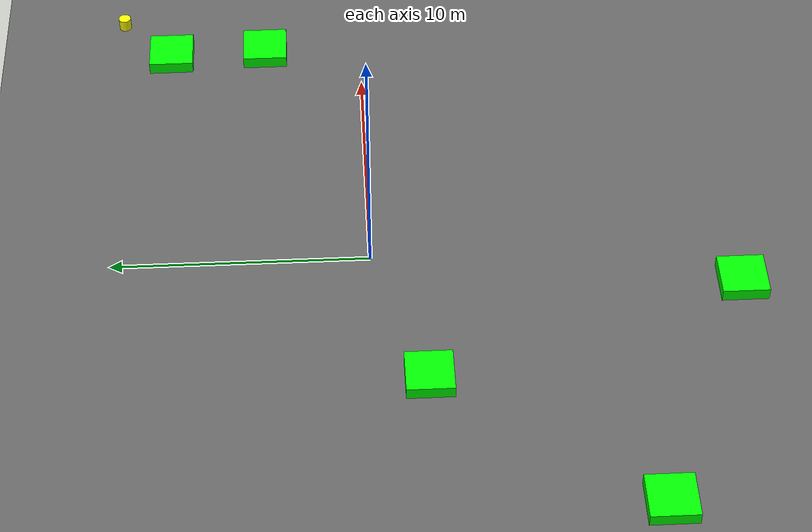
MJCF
<mujoco model="lvl99_naive_obs5_d3long_seed9012">
    <compiler angle="degree" coordinate="local" inertiafromgeom="true"/>
    <option integrator="RK4" timestep="0.01"/>

    <asset>
        <texture builtin="gradient" height="100" rgb1="0.6 0.8 1" rgb2="0 0 0" type="skybox" width="100"/>
        <texture name="floor_texture" type="2d" builtin="checker" width="100" height="100" rgb1="0 0 0" rgb2="0.8 0.8 0.8"/>
        <material name="MatPlane" reflectance="0.5" shininess="1" specular="1" texrepeat="10 10" texture="floor_texture"/>
    </asset>

    <!-- Excluding the contact between the agent and the goal, and the agent and the floor -->
    <contact>
        <exclude body1="agent" body2="goal"/>
        <exclude body1 = "agent" body2 = "floor"/>
    </contact>

    <extension>
        <plugin plugin = "mujoco.pid">
            <instance name = "pid1">
                <config key="kp" value="2"/>
                <config key="ki" value="0"/>
                <config key="kd" value="55"/>
            </instance>
        </plugin>
    </extension>

    <worldbody>
        <light cutoff="100" diffuse="1 1 1" dir="-0 0 -1.3" directional="true" exponent="1" pos="0 0 1.3" specular=".1 .1 .1"/>
        <body name="floor" pos="0 0 0">
            <geom name="floor_geom" type="plane" size="20 20 0.1" material="MatPlane"/>
        </body>

                <body name="goal" pos="0.0000 0.0000 0">
            <geom name="goal_geom" type="plane" size="0.5 0.5 1" pos="0 0 0" rgba="1 0 0 1"/>
        </body>

                <body name="agent" pos="14.0000 10.0000 0.250">
            <joint name="j1" type="slide" axis ="1 0 0 "/>
            <joint name="j2" type="slide" axis ="0 1 0 "/>
            <geom name="agent_geom" type="cylinder" size="0.25 0.25 0.250" rgba="1 1 0 1"/>
        </body>

        <body name="obstacle1" pos="11.9036 7.9456 0.250">  <geom name="obstacle1_geom" type="box" size="0.9000 0.9000 0.250" rgba="0 1 0 1"/></body>
        <body name="obstacle2" pos="12.0593 4.0166 0.250">  <geom name="obstacle2_geom" type="box" size="0.9000 0.9000 0.250" rgba="0 1 0 1"/></body>
        <body name="obstacle3" pos="-6.0664 -1.9505 0.250">  <geom name="obstacle3_geom" type="box" size="0.9000 0.9000 0.250" rgba="0 1 0 1"/></body>
        <body name="obstacle4" pos="-12.0352 -10.0162 0.250">  <geom name="obstacle4_geom" type="box" size="0.9000 0.9000 0.250" rgba="0 1 0 1"/></body>
        <body name="obstacle5" pos="-1.9162 -14.0974 0.250">  <geom name="obstacle5_geom" type="box" size="0.9000 0.9000 0.250" rgba="0 1 0 1"/></body>

    </worldbody>

    <sensor>
<!-- SENSORS -->

        <distance name="dist1" geom1="agent_geom" geom2="obstacle1_geom" cutoff="1.5"/>
        <distance name="dist2" geom1="agent_geom" geom2="obstacle2_geom" cutoff="1.5"/>
        <distance name="dist3" geom1="agent_geom" geom2="obstacle3_geom" cutoff="1.5"/>
        <distance name="dist4" geom1="agent_geom" geom2="obstacle4_geom" cutoff="1.5"/>
        <distance name="dist5" geom1="agent_geom" geom2="obstacle5_geom" cutoff="1.5"/>
</sensor>

    <actuator>
        <plugin joint="j1" plugin="mujoco.pid" instance="pid1" />
        <plugin joint="j2" plugin="mujoco.pid" instance="pid1"/>
    </actuator>
</mujoco>
